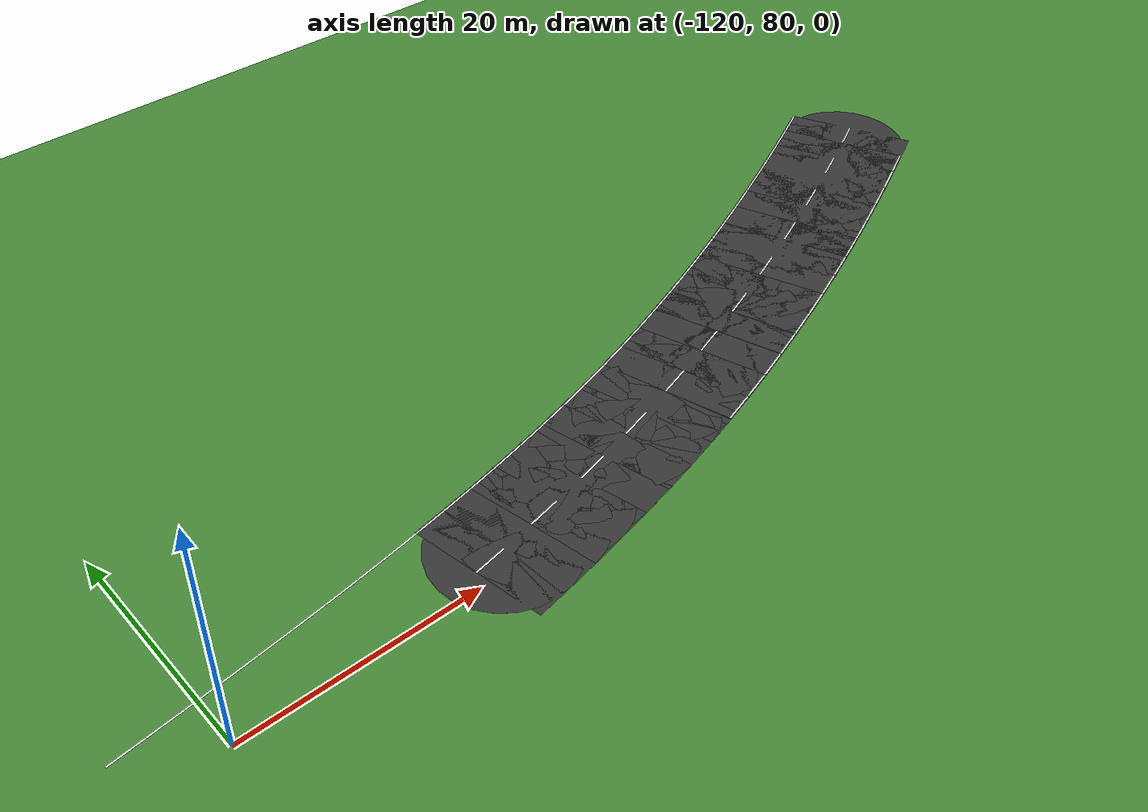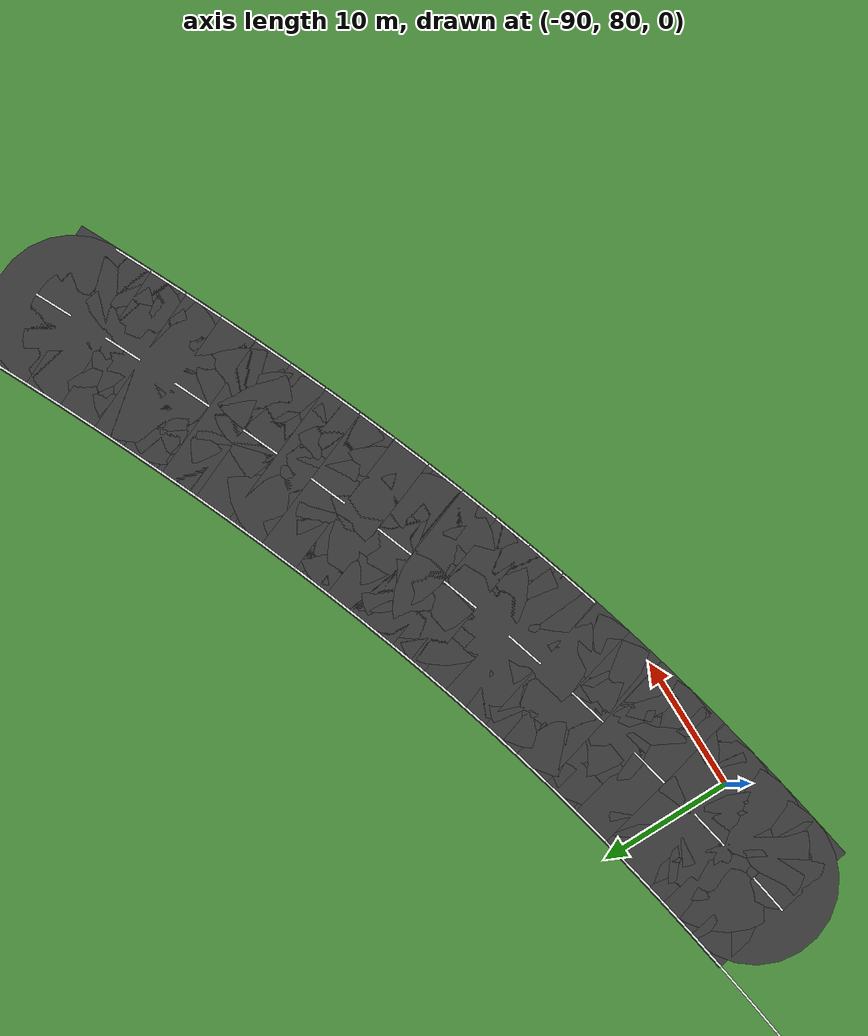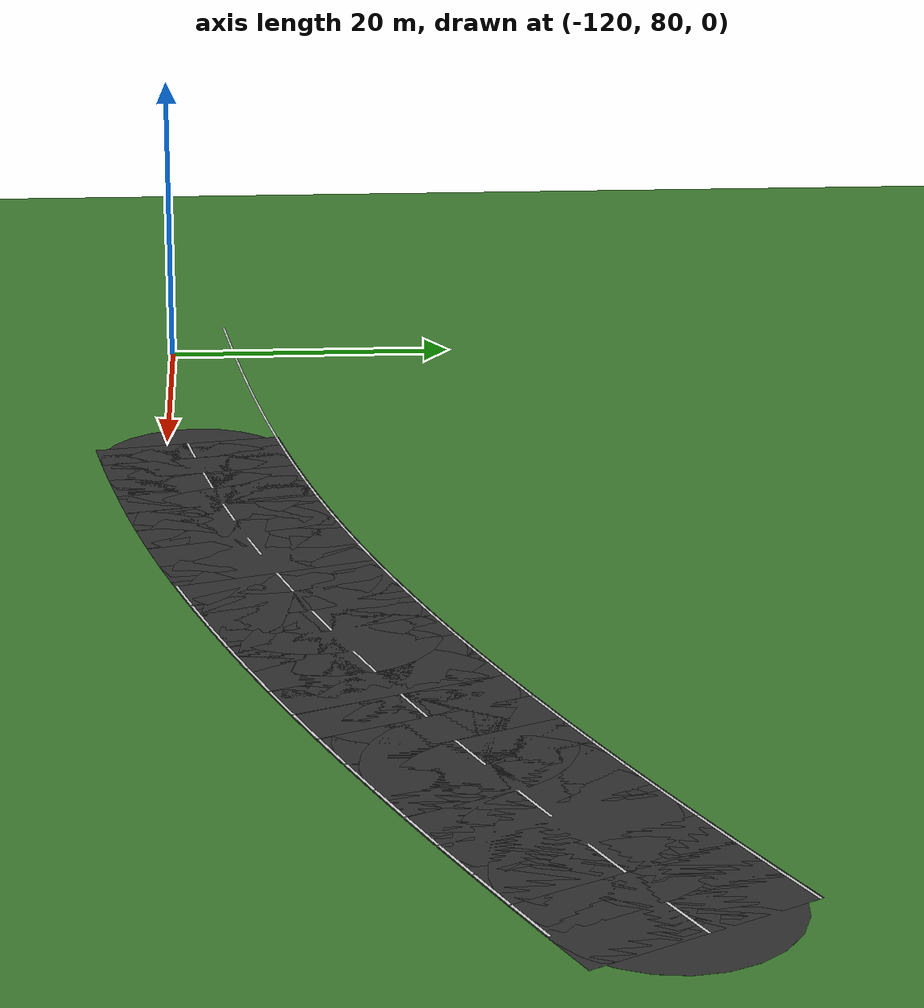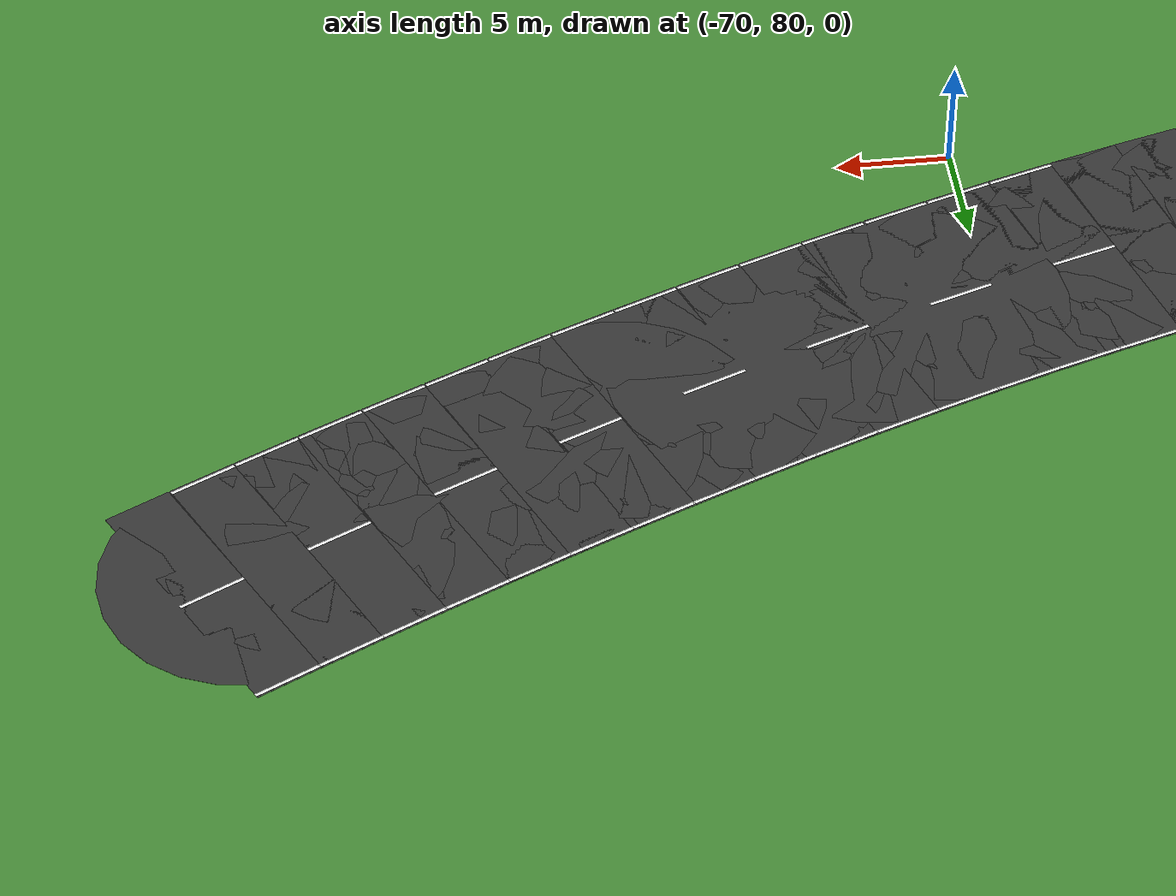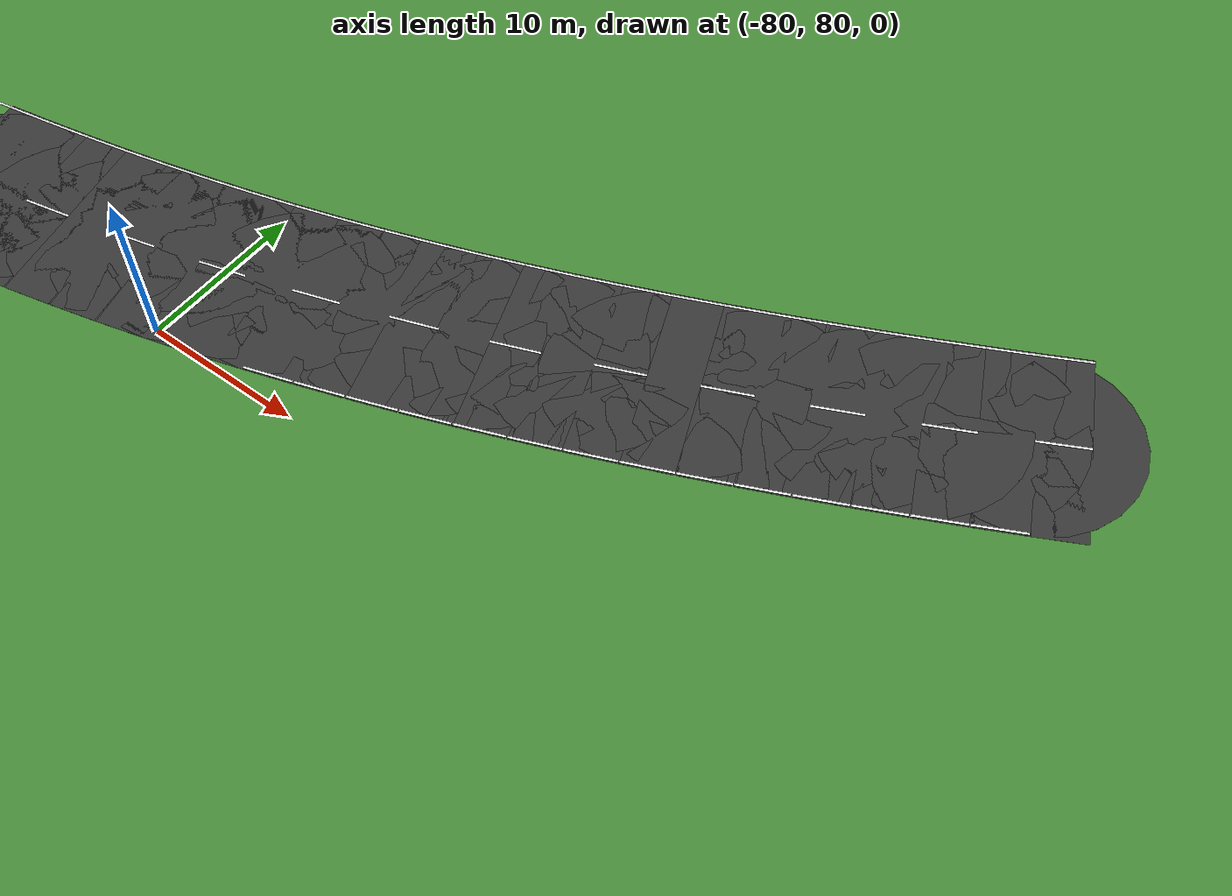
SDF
<sdf version="1.6">
 <world name="sem_silesia_ring_2026">
  <model name="ground_plane">
   <static>true</static>
   <link name="link">
    <collision name="collision">
     <geometry><plane><normal>0 0 1</normal><size>1200 1200</size></plane></geometry>
     <surface><friction><ode><mu>0.6</mu><mu2>0.6</mu2></ode></friction></surface>
    </collision>
    <visual name="visual">
     <geometry><plane><normal>0 0 1</normal><size>1200 1200</size></plane></geometry>
     <material><ambient>0.28 0.55 0.22 1</ambient><diffuse>0.28 0.55 0.22 1</diffuse></material>
    </visual>
   </link>
  </model>
  <model name="road_s334">
   <static>true</static>
   <pose>-35.7005 102.7938 0.0030 0 0 -2.6834</pose>
   <link name="link">
    <visual name="v">
     <geometry><box><size>3.0025 12.0000 0.0060</size></box></geometry>
     <material><ambient>0.22 0.22 0.22 1</ambient><diffuse>0.22 0.22 0.22 1</diffuse></material>
    </visual>
    <collision name="c">
     <geometry><box><size>3.0025 12.0000 0.0060</size></box></geometry>
     <surface><friction><ode><mu>0.9</mu><mu2>0.9</mu2></ode></friction></surface>
    </collision>
   </link>
  </model>
  <model name="wl_R_s334">
   <static>true</static>
   <pose>-38.2881 108.0404 0.0070 0 0 -2.6834</pose>
   <link name="link">
    <visual name="v">
     <geometry><box><size>3.0025 0.1500 0.0080</size></box></geometry>
     <material><ambient>0.95 0.95 0.95 1</ambient><diffuse>0.95 0.95 0.95 1</diffuse></material>
    </visual>
   </link>
  </model>
  <model name="cd_s334">
   <static>true</static>
   <pose>-35.7005 102.7938 0.0070 0 0 -2.6834</pose>
   <link name="link">
    <visual name="v">
     <geometry><box><size>3.0025 0.1500 0.0080</size></box></geometry>
     <material><ambient>0.95 0.95 0.95 1</ambient><diffuse>0.95 0.95 0.95 1</diffuse></material>
    </visual>
   </link>
  </model>
  <model name="road_s335">
   <static>true</static>
   <pose>-38.3986 101.4766 0.0030 0 0 -2.6914</pose>
   <link name="link">
    <visual name="v">
     <geometry><box><size>3.0025 12.0000 0.0060</size></box></geometry>
     <material><ambient>0.22 0.22 0.22 1</ambient><diffuse>0.22 0.22 0.22 1</diffuse></material>
    </visual>
    <collision name="c">
     <geometry><box><size>3.0025 12.0000 0.0060</size></box></geometry>
     <surface><friction><ode><mu>0.9</mu><mu2>0.9</mu2></ode></friction></surface>
    </collision>
   </link>
  </model>
  <model name="road_jnt335">
   <static>true</static>
   <pose>-37.0469 102.1298 0.0030 0 0 0</pose>
   <link name="link">
    <visual name="v">
     <geometry><cylinder><radius>6.0000</radius><length>0.0060</length></cylinder></geometry>
     <material><ambient>0.22 0.22 0.22 1</ambient><diffuse>0.22 0.22 0.22 1</diffuse></material>
    </visual>
    <collision name="c">
     <geometry><cylinder><radius>6.0000</radius><length>0.0060</length></cylinder></geometry>
     <surface><friction><ode><mu>0.9</mu><mu2>0.9</mu2></ode></friction></surface>
    </collision>
   </link>
  </model>
  <model name="wl_L_s335">
   <static>true</static>
   <pose>-35.8533 96.2094 0.0070 0 0 -2.6914</pose>
   <link name="link">
    <visual name="v">
     <geometry><box><size>3.0025 0.1500 0.0080</size></box></geometry>
     <material><ambient>0.95 0.95 0.95 1</ambient><diffuse>0.95 0.95 0.95 1</diffuse></material>
    </visual>
   </link>
  </model>
  <model name="wl_R_s335">
   <static>true</static>
   <pose>-40.9440 106.7438 0.0070 0 0 -2.6914</pose>
   <link name="link">
    <visual name="v">
     <geometry><box><size>3.0025 0.1500 0.0080</size></box></geometry>
     <material><ambient>0.95 0.95 0.95 1</ambient><diffuse>0.95 0.95 0.95 1</diffuse></material>
    </visual>
   </link>
  </model>
  <model name="road_s336">
   <static>true</static>
   <pose>-41.1076 100.1818 0.0030 0 0 -2.7000</pose>
   <link name="link">
    <visual name="v">
     <geometry><box><size>3.0025 12.0000 0.0060</size></box></geometry>
     <material><ambient>0.22 0.22 0.22 1</ambient><diffuse>0.22 0.22 0.22 1</diffuse></material>
    </visual>
    <collision name="c">
     <geometry><box><size>3.0025 12.0000 0.0060</size></box></geometry>
     <surface><friction><ode><mu>0.9</mu><mu2>0.9</mu2></ode></friction></surface>
    </collision>
   </link>
  </model>
  <model name="road_jnt336">
   <static>true</static>
   <pose>-39.7503 100.8234 0.0030 0 0 0</pose>
   <link name="link">
    <visual name="v">
     <geometry><cylinder><radius>6.0000</radius><length>0.0060</length></cylinder></geometry>
     <material><ambient>0.22 0.22 0.22 1</ambient><diffuse>0.22 0.22 0.22 1</diffuse></material>
    </visual>
    <collision name="c">
     <geometry><cylinder><radius>6.0000</radius><length>0.0060</length></cylinder></geometry>
     <surface><friction><ode><mu>0.9</mu><mu2>0.9</mu2></ode></friction></surface>
    </collision>
   </link>
  </model>
  <model name="wl_L_s336">
   <static>true</static>
   <pose>-38.6077 94.8929 0.0070 0 0 -2.7000</pose>
   <link name="link">
    <visual name="v">
     <geometry><box><size>3.0025 0.1500 0.0080</size></box></geometry>
     <material><ambient>0.95 0.95 0.95 1</ambient><diffuse>0.95 0.95 0.95 1</diffuse></material>
    </visual>
   </link>
  </model>
  <model name="wl_R_s336">
   <static>true</static>
   <pose>-43.6076 105.4707 0.0070 0 0 -2.7000</pose>
   <link name="link">
    <visual name="v">
     <geometry><box><size>3.0025 0.1500 0.0080</size></box></geometry>
     <material><ambient>0.95 0.95 0.95 1</ambient><diffuse>0.95 0.95 0.95 1</diffuse></material>
    </visual>
   </link>
  </model>
  <model name="cd_s336">
   <static>true</static>
   <pose>-41.1076 100.1818 0.0070 0 0 -2.7000</pose>
   <link name="link">
    <visual name="v">
     <geometry><box><size>3.0025 0.1500 0.0080</size></box></geometry>
     <material><ambient>0.95 0.95 0.95 1</ambient><diffuse>0.95 0.95 0.95 1</diffuse></material>
    </visual>
   </link>
  </model>
  <model name="road_s337">
   <static>true</static>
   <pose>-43.8280 98.9112 0.0030 0 0 -2.7092</pose>
   <link name="link">
    <visual name="v">
     <geometry><box><size>3.0025 12.0000 0.0060</size></box></geometry>
     <material><ambient>0.22 0.22 0.22 1</ambient><diffuse>0.22 0.22 0.22 1</diffuse></material>
    </visual>
    <collision name="c">
     <geometry><box><size>3.0025 12.0000 0.0060</size></box></geometry>
     <surface><friction><ode><mu>0.9</mu><mu2>0.9</mu2></ode></friction></surface>
    </collision>
   </link>
  </model>
  <model name="road_jnt337">
   <static>true</static>
   <pose>-42.4649 99.5403 0.0030 0 0 0</pose>
   <link name="link">
    <visual name="v">
     <geometry><cylinder><radius>6.0000</radius><length>0.0060</length></cylinder></geometry>
     <material><ambient>0.22 0.22 0.22 1</ambient><diffuse>0.22 0.22 0.22 1</diffuse></material>
    </visual>
    <collision name="c">
     <geometry><cylinder><radius>6.0000</radius><length>0.0060</length></cylinder></geometry>
     <surface><friction><ode><mu>0.9</mu><mu2>0.9</mu2></ode></friction></surface>
    </collision>
   </link>
  </model>
  <model name="wl_L_s337">
   <static>true</static>
   <pose>-41.3766 93.5996 0.0070 0 0 -2.7092</pose>
   <link name="link">
    <visual name="v">
     <geometry><box><size>3.0025 0.1500 0.0080</size></box></geometry>
     <material><ambient>0.95 0.95 0.95 1</ambient><diffuse>0.95 0.95 0.95 1</diffuse></material>
    </visual>
   </link>
  </model>
  <model name="wl_R_s337">
   <static>true</static>
   <pose>-46.2794 104.2228 0.0070 0 0 -2.7092</pose>
   <link name="link">
    <visual name="v">
     <geometry><box><size>3.0025 0.1500 0.0080</size></box></geometry>
     <material><ambient>0.95 0.95 0.95 1</ambient><diffuse>0.95 0.95 0.95 1</diffuse></material>
    </visual>
   </link>
  </model>
  <model name="road_s338">
   <static>true</static>
   <pose>-46.5603 97.6663 0.0030 0 0 -2.7189</pose>
   <link name="link">
    <visual name="v">
     <geometry><box><size>3.0025 12.0000 0.0060</size></box></geometry>
     <material><ambient>0.22 0.22 0.22 1</ambient><diffuse>0.22 0.22 0.22 1</diffuse></material>
    </visual>
    <collision name="c">
     <geometry><box><size>3.0025 12.0000 0.0060</size></box></geometry>
     <surface><friction><ode><mu>0.9</mu><mu2>0.9</mu2></ode></friction></surface>
    </collision>
   </link>
  </model>
  <model name="road_jnt338">
   <static>true</static>
   <pose>-45.1911 98.2821 0.0030 0 0 0</pose>
   <link name="link">
    <visual name="v">
     <geometry><cylinder><radius>6.0000</radius><length>0.0060</length></cylinder></geometry>
     <material><ambient>0.22 0.22 0.22 1</ambient><diffuse>0.22 0.22 0.22 1</diffuse></material>
    </visual>
    <collision name="c">
     <geometry><cylinder><radius>6.0000</radius><length>0.0060</length></cylinder></geometry>
     <surface><friction><ode><mu>0.9</mu><mu2>0.9</mu2></ode></friction></surface>
    </collision>
   </link>
  </model>
  <model name="wl_L_s338">
   <static>true</static>
   <pose>-44.1607 92.3311 0.0070 0 0 -2.7189</pose>
   <link name="link">
    <visual name="v">
     <geometry><box><size>3.0025 0.1500 0.0080</size></box></geometry>
     <material><ambient>0.95 0.95 0.95 1</ambient><diffuse>0.95 0.95 0.95 1</diffuse></material>
    </visual>
   </link>
  </model>
  <model name="wl_R_s338">
   <static>true</static>
   <pose>-48.9598 103.0015 0.0070 0 0 -2.7189</pose>
   <link name="link">
    <visual name="v">
     <geometry><box><size>3.0025 0.1500 0.0080</size></box></geometry>
     <material><ambient>0.95 0.95 0.95 1</ambient><diffuse>0.95 0.95 0.95 1</diffuse></material>
    </visual>
   </link>
  </model>
  <model name="cd_s338">
   <static>true</static>
   <pose>-46.5603 97.6663 0.0070 0 0 -2.7189</pose>
   <link name="link">
    <visual name="v">
     <geometry><box><size>3.0025 0.1500 0.0080</size></box></geometry>
     <material><ambient>0.95 0.95 0.95 1</ambient><diffuse>0.95 0.95 0.95 1</diffuse></material>
    </visual>
   </link>
  </model>
  <model name="road_s339">
   <static>true</static>
   <pose>-49.3049 96.4489 0.0030 0 0 -2.7293</pose>
   <link name="link">
    <visual name="v">
     <geometry><box><size>3.0025 12.0000 0.0060</size></box></geometry>
     <material><ambient>0.22 0.22 0.22 1</ambient><diffuse>0.22 0.22 0.22 1</diffuse></material>
    </visual>
    <collision name="c">
     <geometry><box><size>3.0025 12.0000 0.0060</size></box></geometry>
     <surface><friction><ode><mu>0.9</mu><mu2>0.9</mu2></ode></friction></surface>
    </collision>
   </link>
  </model>
  <model name="road_jnt339">
   <static>true</static>
   <pose>-47.9294 97.0505 0.0030 0 0 0</pose>
   <link name="link">
    <visual name="v">
     <geometry><cylinder><radius>6.0000</radius><length>0.0060</length></cylinder></geometry>
     <material><ambient>0.22 0.22 0.22 1</ambient><diffuse>0.22 0.22 0.22 1</diffuse></material>
    </visual>
    <collision name="c">
     <geometry><cylinder><radius>6.0000</radius><length>0.0060</length></cylinder></geometry>
     <surface><friction><ode><mu>0.9</mu><mu2>0.9</mu2></ode></friction></surface>
    </collision>
   </link>
  </model>
  <model name="wl_L_s339">
   <static>true</static>
   <pose>-46.9605 91.0892 0.0070 0 0 -2.7293</pose>
   <link name="link">
    <visual name="v">
     <geometry><box><size>3.0025 0.1500 0.0080</size></box></geometry>
     <material><ambient>0.95 0.95 0.95 1</ambient><diffuse>0.95 0.95 0.95 1</diffuse></material>
    </visual>
   </link>
  </model>
  <model name="wl_R_s339">
   <static>true</static>
   <pose>-51.6492 101.8086 0.0070 0 0 -2.7293</pose>
   <link name="link">
    <visual name="v">
     <geometry><box><size>3.0025 0.1500 0.0080</size></box></geometry>
     <material><ambient>0.95 0.95 0.95 1</ambient><diffuse>0.95 0.95 0.95 1</diffuse></material>
    </visual>
   </link>
  </model>
  <model name="road_s340">
   <static>true</static>
   <pose>-52.0622 95.2607 0.0030 0 0 -2.7402</pose>
   <link name="link">
    <visual name="v">
     <geometry><box><size>3.0025 12.0000 0.0060</size></box></geometry>
     <material><ambient>0.22 0.22 0.22 1</ambient><diffuse>0.22 0.22 0.22 1</diffuse></material>
    </visual>
    <collision name="c">
     <geometry><box><size>3.0025 12.0000 0.0060</size></box></geometry>
     <surface><friction><ode><mu>0.9</mu><mu2>0.9</mu2></ode></friction></surface>
    </collision>
   </link>
  </model>
  <model name="road_jnt340">
   <static>true</static>
   <pose>-50.6803 95.8473 0.0030 0 0 0</pose>
   <link name="link">
    <visual name="v">
     <geometry><cylinder><radius>6.0000</radius><length>0.0060</length></cylinder></geometry>
     <material><ambient>0.22 0.22 0.22 1</ambient><diffuse>0.22 0.22 0.22 1</diffuse></material>
    </visual>
    <collision name="c">
     <geometry><cylinder><radius>6.0000</radius><length>0.0060</length></cylinder></geometry>
     <surface><friction><ode><mu>0.9</mu><mu2>0.9</mu2></ode></friction></surface>
    </collision>
   </link>
  </model>
  <model name="wl_L_s340">
   <static>true</static>
   <pose>-49.7764 89.8757 0.0070 0 0 -2.7402</pose>
   <link name="link">
    <visual name="v">
     <geometry><box><size>3.0025 0.1500 0.0080</size></box></geometry>
     <material><ambient>0.95 0.95 0.95 1</ambient><diffuse>0.95 0.95 0.95 1</diffuse></material>
    </visual>
   </link>
  </model>
  <model name="wl_R_s340">
   <static>true</static>
   <pose>-54.3480 100.6456 0.0070 0 0 -2.7402</pose>
   <link name="link">
    <visual name="v">
     <geometry><box><size>3.0025 0.1500 0.0080</size></box></geometry>
     <material><ambient>0.95 0.95 0.95 1</ambient><diffuse>0.95 0.95 0.95 1</diffuse></material>
    </visual>
   </link>
  </model>
  <model name="cd_s340">
   <static>true</static>
   <pose>-52.0622 95.2607 0.0070 0 0 -2.7402</pose>
   <link name="link">
    <visual name="v">
     <geometry><box><size>3.0025 0.1500 0.0080</size></box></geometry>
     <material><ambient>0.95 0.95 0.95 1</ambient><diffuse>0.95 0.95 0.95 1</diffuse></material>
    </visual>
   </link>
  </model>
  <model name="road_s341">
   <static>true</static>
   <pose>-54.8327 94.1034 0.0030 0 0 -2.7516</pose>
   <link name="link">
    <visual name="v">
     <geometry><box><size>3.0025 12.0000 0.0060</size></box></geometry>
     <material><ambient>0.22 0.22 0.22 1</ambient><diffuse>0.22 0.22 0.22 1</diffuse></material>
    </visual>
    <collision name="c">
     <geometry><box><size>3.0025 12.0000 0.0060</size></box></geometry>
     <surface><friction><ode><mu>0.9</mu><mu2>0.9</mu2></ode></friction></surface>
    </collision>
   </link>
  </model>
  <model name="road_jnt341">
   <static>true</static>
   <pose>-53.4441 94.6741 0.0030 0 0 0</pose>
   <link name="link">
    <visual name="v">
     <geometry><cylinder><radius>6.0000</radius><length>0.0060</length></cylinder></geometry>
     <material><ambient>0.22 0.22 0.22 1</ambient><diffuse>0.22 0.22 0.22 1</diffuse></material>
    </visual>
    <collision name="c">
     <geometry><cylinder><radius>6.0000</radius><length>0.0060</length></cylinder></geometry>
     <surface><friction><ode><mu>0.9</mu><mu2>0.9</mu2></ode></friction></surface>
    </collision>
   </link>
  </model>
  <model name="wl_L_s341">
   <static>true</static>
   <pose>-52.6089 88.6926 0.0070 0 0 -2.7516</pose>
   <link name="link">
    <visual name="v">
     <geometry><box><size>3.0025 0.1500 0.0080</size></box></geometry>
     <material><ambient>0.95 0.95 0.95 1</ambient><diffuse>0.95 0.95 0.95 1</diffuse></material>
    </visual>
   </link>
  </model>
  <model name="wl_R_s341">
   <static>true</static>
   <pose>-57.0565 99.5142 0.0070 0 0 -2.7516</pose>
   <link name="link">
    <visual name="v">
     <geometry><box><size>3.0025 0.1500 0.0080</size></box></geometry>
     <material><ambient>0.95 0.95 0.95 1</ambient><diffuse>0.95 0.95 0.95 1</diffuse></material>
    </visual>
   </link>
  </model>
  <model name="road_s342">
   <static>true</static>
   <pose>-57.6166 92.9788 0.0030 0 0 -2.7637</pose>
   <link name="link">
    <visual name="v">
     <geometry><box><size>3.0025 12.0000 0.0060</size></box></geometry>
     <material><ambient>0.22 0.22 0.22 1</ambient><diffuse>0.22 0.22 0.22 1</diffuse></material>
    </visual>
    <collision name="c">
     <geometry><box><size>3.0025 12.0000 0.0060</size></box></geometry>
     <surface><friction><ode><mu>0.9</mu><mu2>0.9</mu2></ode></friction></surface>
    </collision>
   </link>
  </model>
  <model name="road_jnt342">
   <static>true</static>
   <pose>-56.2212 93.5327 0.0030 0 0 0</pose>
   <link name="link">
    <visual name="v">
     <geometry><cylinder><radius>6.0000</radius><length>0.0060</length></cylinder></geometry>
     <material><ambient>0.22 0.22 0.22 1</ambient><diffuse>0.22 0.22 0.22 1</diffuse></material>
    </visual>
    <collision name="c">
     <geometry><cylinder><radius>6.0000</radius><length>0.0060</length></cylinder></geometry>
     <surface><friction><ode><mu>0.9</mu><mu2>0.9</mu2></ode></friction></surface>
    </collision>
   </link>
  </model>
  <model name="wl_L_s342">
   <static>true</static>
   <pose>-55.4583 87.5415 0.0070 0 0 -2.7637</pose>
   <link name="link">
    <visual name="v">
     <geometry><box><size>3.0025 0.1500 0.0080</size></box></geometry>
     <material><ambient>0.95 0.95 0.95 1</ambient><diffuse>0.95 0.95 0.95 1</diffuse></material>
    </visual>
   </link>
  </model>
  <model name="wl_R_s342">
   <static>true</static>
   <pose>-59.7749 98.4161 0.0070 0 0 -2.7637</pose>
   <link name="link">
    <visual name="v">
     <geometry><box><size>3.0025 0.1500 0.0080</size></box></geometry>
     <material><ambient>0.95 0.95 0.95 1</ambient><diffuse>0.95 0.95 0.95 1</diffuse></material>
    </visual>
   </link>
  </model>
  <model name="cd_s342">
   <static>true</static>
   <pose>-57.6166 92.9788 0.0070 0 0 -2.7637</pose>
   <link name="link">
    <visual name="v">
     <geometry><box><size>3.0025 0.1500 0.0080</size></box></geometry>
     <material><ambient>0.95 0.95 0.95 1</ambient><diffuse>0.95 0.95 0.95 1</diffuse></material>
    </visual>
   </link>
  </model>
  <model name="road_s343">
   <static>true</static>
   <pose>-60.4142 91.8888 0.0030 0 0 -2.7764</pose>
   <link name="link">
    <visual name="v">
     <geometry><box><size>3.0025 12.0000 0.0060</size></box></geometry>
     <material><ambient>0.22 0.22 0.22 1</ambient><diffuse>0.22 0.22 0.22 1</diffuse></material>
    </visual>
    <collision name="c">
     <geometry><box><size>3.0025 12.0000 0.0060</size></box></geometry>
     <surface><friction><ode><mu>0.9</mu><mu2>0.9</mu2></ode></friction></surface>
    </collision>
   </link>
  </model>
  <model name="road_jnt343">
   <static>true</static>
   <pose>-59.0119 92.4249 0.0030 0 0 0</pose>
   <link name="link">
    <visual name="v">
     <geometry><cylinder><radius>6.0000</radius><length>0.0060</length></cylinder></geometry>
     <material><ambient>0.22 0.22 0.22 1</ambient><diffuse>0.22 0.22 0.22 1</diffuse></material>
    </visual>
    <collision name="c">
     <geometry><cylinder><radius>6.0000</radius><length>0.0060</length></cylinder></geometry>
     <surface><friction><ode><mu>0.9</mu><mu2>0.9</mu2></ode></friction></surface>
    </collision>
   </link>
  </model>
  <model name="wl_L_s343">
   <static>true</static>
   <pose>-58.3249 86.4246 0.0070 0 0 -2.7764</pose>
   <link name="link">
    <visual name="v">
     <geometry><box><size>3.0025 0.1500 0.0080</size></box></geometry>
     <material><ambient>0.95 0.95 0.95 1</ambient><diffuse>0.95 0.95 0.95 1</diffuse></material>
    </visual>
   </link>
  </model>
  <model name="wl_R_s343">
   <static>true</static>
   <pose>-62.5035 97.3530 0.0070 0 0 -2.7764</pose>
   <link name="link">
    <visual name="v">
     <geometry><box><size>3.0025 0.1500 0.0080</size></box></geometry>
     <material><ambient>0.95 0.95 0.95 1</ambient><diffuse>0.95 0.95 0.95 1</diffuse></material>
    </visual>
   </link>
  </model>
  <model name="road_s344">
   <static>true</static>
   <pose>-63.2257 90.8351 0.0030 0 0 -2.7897</pose>
   <link name="link">
    <visual name="v">
     <geometry><box><size>3.0025 12.0000 0.0060</size></box></geometry>
     <material><ambient>0.22 0.22 0.22 1</ambient><diffuse>0.22 0.22 0.22 1</diffuse></material>
    </visual>
    <collision name="c">
     <geometry><box><size>3.0025 12.0000 0.0060</size></box></geometry>
     <surface><friction><ode><mu>0.9</mu><mu2>0.9</mu2></ode></friction></surface>
    </collision>
   </link>
  </model>
  <model name="road_jnt344">
   <static>true</static>
   <pose>-61.8164 91.3526 0.0030 0 0 0</pose>
   <link name="link">
    <visual name="v">
     <geometry><cylinder><radius>6.0000</radius><length>0.0060</length></cylinder></geometry>
     <material><ambient>0.22 0.22 0.22 1</ambient><diffuse>0.22 0.22 0.22 1</diffuse></material>
    </visual>
    <collision name="c">
     <geometry><cylinder><radius>6.0000</radius><length>0.0060</length></cylinder></geometry>
     <surface><friction><ode><mu>0.9</mu><mu2>0.9</mu2></ode></friction></surface>
    </collision>
   </link>
  </model>
  <model name="wl_L_s344">
   <static>true</static>
   <pose>-61.2091 85.3437 0.0070 0 0 -2.7897</pose>
   <link name="link">
    <visual name="v">
     <geometry><box><size>3.0025 0.1500 0.0080</size></box></geometry>
     <material><ambient>0.95 0.95 0.95 1</ambient><diffuse>0.95 0.95 0.95 1</diffuse></material>
    </visual>
   </link>
  </model>
  <model name="wl_R_s344">
   <static>true</static>
   <pose>-65.2423 96.3265 0.0070 0 0 -2.7897</pose>
   <link name="link">
    <visual name="v">
     <geometry><box><size>3.0025 0.1500 0.0080</size></box></geometry>
     <material><ambient>0.95 0.95 0.95 1</ambient><diffuse>0.95 0.95 0.95 1</diffuse></material>
    </visual>
   </link>
  </model>
  <model name="cd_s344">
   <static>true</static>
   <pose>-63.2257 90.8351 0.0070 0 0 -2.7897</pose>
   <link name="link">
    <visual name="v">
     <geometry><box><size>3.0025 0.1500 0.0080</size></box></geometry>
     <material><ambient>0.95 0.95 0.95 1</ambient><diffuse>0.95 0.95 0.95 1</diffuse></material>
    </visual>
   </link>
  </model>
  <model name="road_s345">
   <static>true</static>
   <pose>-66.0512 89.8197 0.0030 0 0 -2.8035</pose>
   <link name="link">
    <visual name="v">
     <geometry><box><size>3.0025 12.0000 0.0060</size></box></geometry>
     <material><ambient>0.22 0.22 0.22 1</ambient><diffuse>0.22 0.22 0.22 1</diffuse></material>
    </visual>
    <collision name="c">
     <geometry><box><size>3.0025 12.0000 0.0060</size></box></geometry>
     <surface><friction><ode><mu>0.9</mu><mu2>0.9</mu2></ode></friction></surface>
    </collision>
   </link>
  </model>
  <model name="road_jnt345">
   <static>true</static>
   <pose>-64.6349 90.3176 0.0030 0 0 0</pose>
   <link name="link">
    <visual name="v">
     <geometry><cylinder><radius>6.0000</radius><length>0.0060</length></cylinder></geometry>
     <material><ambient>0.22 0.22 0.22 1</ambient><diffuse>0.22 0.22 0.22 1</diffuse></material>
    </visual>
    <collision name="c">
     <geometry><cylinder><radius>6.0000</radius><length>0.0060</length></cylinder></geometry>
     <surface><friction><ode><mu>0.9</mu><mu2>0.9</mu2></ode></friction></surface>
    </collision>
   </link>
  </model>
  <model name="wl_L_s345">
   <static>true</static>
   <pose>-64.1109 84.3008 0.0070 0 0 -2.8035</pose>
   <link name="link">
    <visual name="v">
     <geometry><box><size>3.0025 0.1500 0.0080</size></box></geometry>
     <material><ambient>0.95 0.95 0.95 1</ambient><diffuse>0.95 0.95 0.95 1</diffuse></material>
    </visual>
   </link>
  </model>
  <model name="wl_R_s345">
   <static>true</static>
   <pose>-67.9915 95.3385 0.0070 0 0 -2.8035</pose>
   <link name="link">
    <visual name="v">
     <geometry><box><size>3.0025 0.1500 0.0080</size></box></geometry>
     <material><ambient>0.95 0.95 0.95 1</ambient><diffuse>0.95 0.95 0.95 1</diffuse></material>
    </visual>
   </link>
  </model>
  <model name="road_s346">
   <static>true</static>
   <pose>-68.8908 88.8444 0.0030 0 0 -2.8180</pose>
   <link name="link">
    <visual name="v">
     <geometry><box><size>3.0025 12.0000 0.0060</size></box></geometry>
     <material><ambient>0.22 0.22 0.22 1</ambient><diffuse>0.22 0.22 0.22 1</diffuse></material>
    </visual>
    <collision name="c">
     <geometry><box><size>3.0025 12.0000 0.0060</size></box></geometry>
     <surface><friction><ode><mu>0.9</mu><mu2>0.9</mu2></ode></friction></surface>
    </collision>
   </link>
  </model>
  <model name="road_jnt346">
   <static>true</static>
   <pose>-67.4675 89.3218 0.0030 0 0 0</pose>
   <link name="link">
    <visual name="v">
     <geometry><cylinder><radius>6.0000</radius><length>0.0060</length></cylinder></geometry>
     <material><ambient>0.22 0.22 0.22 1</ambient><diffuse>0.22 0.22 0.22 1</diffuse></material>
    </visual>
    <collision name="c">
     <geometry><cylinder><radius>6.0000</radius><length>0.0060</length></cylinder></geometry>
     <surface><friction><ode><mu>0.9</mu><mu2>0.9</mu2></ode></friction></surface>
    </collision>
   </link>
  </model>
  <model name="wl_L_s346">
   <static>true</static>
   <pose>-67.0305 83.2980 0.0070 0 0 -2.8180</pose>
   <link name="link">
    <visual name="v">
     <geometry><box><size>3.0025 0.1500 0.0080</size></box></geometry>
     <material><ambient>0.95 0.95 0.95 1</ambient><diffuse>0.95 0.95 0.95 1</diffuse></material>
    </visual>
   </link>
  </model>
  <model name="wl_R_s346">
   <static>true</static>
   <pose>-70.7511 94.3907 0.0070 0 0 -2.8180</pose>
   <link name="link">
    <visual name="v">
     <geometry><box><size>3.0025 0.1500 0.0080</size></box></geometry>
     <material><ambient>0.95 0.95 0.95 1</ambient><diffuse>0.95 0.95 0.95 1</diffuse></material>
    </visual>
   </link>
  </model>
  <model name="cd_s346">
   <static>true</static>
   <pose>-68.8908 88.8444 0.0070 0 0 -2.8180</pose>
   <link name="link">
    <visual name="v">
     <geometry><box><size>3.0025 0.1500 0.0080</size></box></geometry>
     <material><ambient>0.95 0.95 0.95 1</ambient><diffuse>0.95 0.95 0.95 1</diffuse></material>
    </visual>
   </link>
  </model>
  <model name="road_s347">
   <static>true</static>
   <pose>-71.7445 87.9110 0.0030 0 0 -2.8330</pose>
   <link name="link">
    <visual name="v">
     <geometry><box><size>3.0025 12.0000 0.0060</size></box></geometry>
     <material><ambient>0.22 0.22 0.22 1</ambient><diffuse>0.22 0.22 0.22 1</diffuse></material>
    </visual>
    <collision name="c">
     <geometry><box><size>3.0025 12.0000 0.0060</size></box></geometry>
     <surface><friction><ode><mu>0.9</mu><mu2>0.9</mu2></ode></friction></surface>
    </collision>
   </link>
  </model>
  <model name="road_jnt347">
   <static>true</static>
   <pose>-70.3141 88.3670 0.0030 0 0 0</pose>
   <link name="link">
    <visual name="v">
     <geometry><cylinder><radius>6.0000</radius><length>0.0060</length></cylinder></geometry>
     <material><ambient>0.22 0.22 0.22 1</ambient><diffuse>0.22 0.22 0.22 1</diffuse></material>
    </visual>
    <collision name="c">
     <geometry><cylinder><radius>6.0000</radius><length>0.0060</length></cylinder></geometry>
     <surface><friction><ode><mu>0.9</mu><mu2>0.9</mu2></ode></friction></surface>
    </collision>
   </link>
  </model>
  <model name="wl_L_s347">
   <static>true</static>
   <pose>-69.9679 82.3373 0.0070 0 0 -2.8330</pose>
   <link name="link">
    <visual name="v">
     <geometry><box><size>3.0025 0.1500 0.0080</size></box></geometry>
     <material><ambient>0.95 0.95 0.95 1</ambient><diffuse>0.95 0.95 0.95 1</diffuse></material>
    </visual>
   </link>
  </model>
  <model name="wl_R_s347">
   <static>true</static>
   <pose>-73.5211 93.4848 0.0070 0 0 -2.8330</pose>
   <link name="link">
    <visual name="v">
     <geometry><box><size>3.0025 0.1500 0.0080</size></box></geometry>
     <material><ambient>0.95 0.95 0.95 1</ambient><diffuse>0.95 0.95 0.95 1</diffuse></material>
    </visual>
   </link>
  </model>
  <model name="road_s348">
   <static>true</static>
   <pose>-74.6121 87.0216 0.0030 0 0 -2.8487</pose>
   <link name="link">
    <visual name="v">
     <geometry><box><size>3.0025 12.0000 0.0060</size></box></geometry>
     <material><ambient>0.22 0.22 0.22 1</ambient><diffuse>0.22 0.22 0.22 1</diffuse></material>
    </visual>
    <collision name="c">
     <geometry><box><size>3.0025 12.0000 0.0060</size></box></geometry>
     <surface><friction><ode><mu>0.9</mu><mu2>0.9</mu2></ode></friction></surface>
    </collision>
   </link>
  </model>
  <model name="road_jnt348">
   <static>true</static>
   <pose>-73.1748 87.4551 0.0030 0 0 0</pose>
   <link name="link">
    <visual name="v">
     <geometry><cylinder><radius>6.0000</radius><length>0.0060</length></cylinder></geometry>
     <material><ambient>0.22 0.22 0.22 1</ambient><diffuse>0.22 0.22 0.22 1</diffuse></material>
    </visual>
    <collision name="c">
     <geometry><cylinder><radius>6.0000</radius><length>0.0060</length></cylinder></geometry>
     <surface><friction><ode><mu>0.9</mu><mu2>0.9</mu2></ode></friction></surface>
    </collision>
   </link>
  </model>
  <model name="wl_L_s348">
   <static>true</static>
   <pose>-72.9229 81.4208 0.0070 0 0 -2.8487</pose>
   <link name="link">
    <visual name="v">
     <geometry><box><size>3.0025 0.1500 0.0080</size></box></geometry>
     <material><ambient>0.95 0.95 0.95 1</ambient><diffuse>0.95 0.95 0.95 1</diffuse></material>
    </visual>
   </link>
  </model>
  <model name="wl_R_s348">
   <static>true</static>
   <pose>-76.3013 92.6225 0.0070 0 0 -2.8487</pose>
   <link name="link">
    <visual name="v">
     <geometry><box><size>3.0025 0.1500 0.0080</size></box></geometry>
     <material><ambient>0.95 0.95 0.95 1</ambient><diffuse>0.95 0.95 0.95 1</diffuse></material>
    </visual>
   </link>
  </model>
  <model name="cd_s348">
   <static>true</static>
   <pose>-74.6121 87.0216 0.0070 0 0 -2.8487</pose>
   <link name="link">
    <visual name="v">
     <geometry><box><size>3.0025 0.1500 0.0080</size></box></geometry>
     <material><ambient>0.95 0.95 0.95 1</ambient><diffuse>0.95 0.95 0.95 1</diffuse></material>
    </visual>
   </link>
  </model>
  <model name="road_s349">
   <static>true</static>
   <pose>-77.4936 86.1780 0.0030 0 0 -2.8649</pose>
   <link name="link">
    <visual name="v">
     <geometry><box><size>3.0025 12.0000 0.0060</size></box></geometry>
     <material><ambient>0.22 0.22 0.22 1</ambient><diffuse>0.22 0.22 0.22 1</diffuse></material>
    </visual>
    <collision name="c">
     <geometry><box><size>3.0025 12.0000 0.0060</size></box></geometry>
     <surface><friction><ode><mu>0.9</mu><mu2>0.9</mu2></ode></friction></surface>
    </collision>
   </link>
  </model>
  <model name="road_jnt349">
   <static>true</static>
   <pose>-76.0494 86.5882 0.0030 0 0 0</pose>
   <link name="link">
    <visual name="v">
     <geometry><cylinder><radius>6.0000</radius><length>0.0060</length></cylinder></geometry>
     <material><ambient>0.22 0.22 0.22 1</ambient><diffuse>0.22 0.22 0.22 1</diffuse></material>
    </visual>
    <collision name="c">
     <geometry><cylinder><radius>6.0000</radius><length>0.0060</length></cylinder></geometry>
     <surface><friction><ode><mu>0.9</mu><mu2>0.9</mu2></ode></friction></surface>
    </collision>
   </link>
  </model>
  <model name="wl_R_s349">
   <static>true</static>
   <pose>-79.0917 91.8055 0.0070 0 0 -2.8649</pose>
   <link name="link">
    <visual name="v">
     <geometry><box><size>3.0025 0.1500 0.0080</size></box></geometry>
     <material><ambient>0.95 0.95 0.95 1</ambient><diffuse>0.95 0.95 0.95 1</diffuse></material>
    </visual>
   </link>
  </model>
  <model name="road_s350">
   <static>true</static>
   <pose>-80.3886 85.3822 0.0030 0 0 -2.8817</pose>
   <link name="link">
    <visual name="v">
     <geometry><box><size>3.0025 12.0000 0.0060</size></box></geometry>
     <material><ambient>0.22 0.22 0.22 1</ambient><diffuse>0.22 0.22 0.22 1</diffuse></material>
    </visual>
    <collision name="c">
     <geometry><box><size>3.0025 12.0000 0.0060</size></box></geometry>
     <surface><friction><ode><mu>0.9</mu><mu2>0.9</mu2></ode></friction></surface>
    </collision>
   </link>
  </model>
  <model name="road_jnt350">
   <static>true</static>
   <pose>-78.9377 85.7679 0.0030 0 0 0</pose>
   <link name="link">
    <visual name="v">
     <geometry><cylinder><radius>6.0000</radius><length>0.0060</length></cylinder></geometry>
     <material><ambient>0.22 0.22 0.22 1</ambient><diffuse>0.22 0.22 0.22 1</diffuse></material>
    </visual>
    <collision name="c">
     <geometry><cylinder><radius>6.0000</radius><length>0.0060</length></cylinder></geometry>
     <surface><friction><ode><mu>0.9</mu><mu2>0.9</mu2></ode></friction></surface>
    </collision>
   </link>
  </model>
  <model name="wl_R_s350">
   <static>true</static>
   <pose>-81.8919 91.0357 0.0070 0 0 -2.8817</pose>
   <link name="link">
    <visual name="v">
     <geometry><box><size>3.0025 0.1500 0.0080</size></box></geometry>
     <material><ambient>0.95 0.95 0.95 1</ambient><diffuse>0.95 0.95 0.95 1</diffuse></material>
    </visual>
   </link>
  </model>
  <model name="cd_s350">
   <static>true</static>
   <pose>-80.3886 85.3822 0.0070 0 0 -2.8817</pose>
   <link name="link">
    <visual name="v">
     <geometry><box><size>3.0025 0.1500 0.0080</size></box></geometry>
     <material><ambient>0.95 0.95 0.95 1</ambient><diffuse>0.95 0.95 0.95 1</diffuse></material>
    </visual>
   </link>
  </model>
  <model name="road_s351">
   <static>true</static>
   <pose>-83.2966 84.6354 0.0030 0 0 -2.8988</pose>
   <link name="link">
    <visual name="v">
     <geometry><box><size>3.0025 12.0000 0.0060</size></box></geometry>
     <material><ambient>0.22 0.22 0.22 1</ambient><diffuse>0.22 0.22 0.22 1</diffuse></material>
    </visual>
    <collision name="c">
     <geometry><box><size>3.0025 12.0000 0.0060</size></box></geometry>
     <surface><friction><ode><mu>0.9</mu><mu2>0.9</mu2></ode></friction></surface>
    </collision>
   </link>
  </model>
  <model name="road_jnt351">
   <static>true</static>
   <pose>-81.8394 84.9964 0.0030 0 0 0</pose>
   <link name="link">
    <visual name="v">
     <geometry><cylinder><radius>6.0000</radius><length>0.0060</length></cylinder></geometry>
     <material><ambient>0.22 0.22 0.22 1</ambient><diffuse>0.22 0.22 0.22 1</diffuse></material>
    </visual>
    <collision name="c">
     <geometry><cylinder><radius>6.0000</radius><length>0.0060</length></cylinder></geometry>
     <surface><friction><ode><mu>0.9</mu><mu2>0.9</mu2></ode></friction></surface>
    </collision>
   </link>
  </model>
  <model name="wl_R_s351">
   <static>true</static>
   <pose>-84.7031 90.3138 0.0070 0 0 -2.8988</pose>
   <link name="link">
    <visual name="v">
     <geometry><box><size>3.0025 0.1500 0.0080</size></box></geometry>
     <material><ambient>0.95 0.95 0.95 1</ambient><diffuse>0.95 0.95 0.95 1</diffuse></material>
    </visual>
   </link>
  </model>
  <model name="road_s352">
   <static>true</static>
   <pose>-86.2168 83.9374 0.0030 0 0 -2.9151</pose>
   <link name="link">
    <visual name="v">
     <geometry><box><size>3.0025 12.0000 0.0060</size></box></geometry>
     <material><ambient>0.22 0.22 0.22 1</ambient><diffuse>0.22 0.22 0.22 1</diffuse></material>
    </visual>
    <collision name="c">
     <geometry><box><size>3.0025 12.0000 0.0060</size></box></geometry>
     <surface><friction><ode><mu>0.9</mu><mu2>0.9</mu2></ode></friction></surface>
    </collision>
   </link>
  </model>
  <model name="road_jnt352">
   <static>true</static>
   <pose>-84.7538 84.2745 0.0030 0 0 0</pose>
   <link name="link">
    <visual name="v">
     <geometry><cylinder><radius>6.0000</radius><length>0.0060</length></cylinder></geometry>
     <material><ambient>0.22 0.22 0.22 1</ambient><diffuse>0.22 0.22 0.22 1</diffuse></material>
    </visual>
    <collision name="c">
     <geometry><cylinder><radius>6.0000</radius><length>0.0060</length></cylinder></geometry>
     <surface><friction><ode><mu>0.9</mu><mu2>0.9</mu2></ode></friction></surface>
    </collision>
   </link>
  </model>
  <model name="wl_R_s352">
   <static>true</static>
   <pose>-87.5303 89.6380 0.0070 0 0 -2.9151</pose>
   <link name="link">
    <visual name="v">
     <geometry><box><size>3.0025 0.1500 0.0080</size></box></geometry>
     <material><ambient>0.95 0.95 0.95 1</ambient><diffuse>0.95 0.95 0.95 1</diffuse></material>
    </visual>
   </link>
  </model>
  <model name="cd_s352">
   <static>true</static>
   <pose>-86.2168 83.9374 0.0070 0 0 -2.9151</pose>
   <link name="link">
    <visual name="v">
     <geometry><box><size>3.0025 0.1500 0.0080</size></box></geometry>
     <material><ambient>0.95 0.95 0.95 1</ambient><diffuse>0.95 0.95 0.95 1</diffuse></material>
    </visual>
   </link>
  </model>
  <model name="road_s353">
   <static>true</static>
   <pose>-89.1476 83.2857 0.0030 0 0 -2.9305</pose>
   <link name="link">
    <visual name="v">
     <geometry><box><size>3.0025 12.0000 0.0060</size></box></geometry>
     <material><ambient>0.22 0.22 0.22 1</ambient><diffuse>0.22 0.22 0.22 1</diffuse></material>
    </visual>
    <collision name="c">
     <geometry><box><size>3.0025 12.0000 0.0060</size></box></geometry>
     <surface><friction><ode><mu>0.9</mu><mu2>0.9</mu2></ode></friction></surface>
    </collision>
   </link>
  </model>
  <model name="road_jnt353">
   <static>true</static>
   <pose>-87.6797 83.6003 0.0030 0 0 0</pose>
   <link name="link">
    <visual name="v">
     <geometry><cylinder><radius>6.0000</radius><length>0.0060</length></cylinder></geometry>
     <material><ambient>0.22 0.22 0.22 1</ambient><diffuse>0.22 0.22 0.22 1</diffuse></material>
    </visual>
    <collision name="c">
     <geometry><cylinder><radius>6.0000</radius><length>0.0060</length></cylinder></geometry>
     <surface><friction><ode><mu>0.9</mu><mu2>0.9</mu2></ode></friction></surface>
    </collision>
   </link>
  </model>
  <model name="wl_R_s353">
   <static>true</static>
   <pose>-90.3734 89.0059 0.0070 0 0 -2.9305</pose>
   <link name="link">
    <visual name="v">
     <geometry><box><size>3.0025 0.1500 0.0080</size></box></geometry>
     <material><ambient>0.95 0.95 0.95 1</ambient><diffuse>0.95 0.95 0.95 1</diffuse></material>
    </visual>
   </link>
  </model>
  <model name="road_s354">
   <static>true</static>
   <pose>-92.0878 82.6777 0.0030 0 0 -2.9449</pose>
   <link name="link">
    <visual name="v">
     <geometry><box><size>3.0025 12.0000 0.0060</size></box></geometry>
     <material><ambient>0.22 0.22 0.22 1</ambient><diffuse>0.22 0.22 0.22 1</diffuse></material>
    </visual>
    <collision name="c">
     <geometry><box><size>3.0025 12.0000 0.0060</size></box></geometry>
     <surface><friction><ode><mu>0.9</mu><mu2>0.9</mu2></ode></friction></surface>
    </collision>
   </link>
  </model>
  <model name="road_jnt354">
   <static>true</static>
   <pose>-90.6155 82.9712 0.0030 0 0 0</pose>
   <link name="link">
    <visual name="v">
     <geometry><cylinder><radius>6.0000</radius><length>0.0060</length></cylinder></geometry>
     <material><ambient>0.22 0.22 0.22 1</ambient><diffuse>0.22 0.22 0.22 1</diffuse></material>
    </visual>
    <collision name="c">
     <geometry><cylinder><radius>6.0000</radius><length>0.0060</length></cylinder></geometry>
     <surface><friction><ode><mu>0.9</mu><mu2>0.9</mu2></ode></friction></surface>
    </collision>
   </link>
  </model>
  <model name="wl_R_s354">
   <static>true</static>
   <pose>-93.2313 88.4149 0.0070 0 0 -2.9449</pose>
   <link name="link">
    <visual name="v">
     <geometry><box><size>3.0025 0.1500 0.0080</size></box></geometry>
     <material><ambient>0.95 0.95 0.95 1</ambient><diffuse>0.95 0.95 0.95 1</diffuse></material>
    </visual>
   </link>
  </model>
  <model name="cd_s354">
   <static>true</static>
   <pose>-92.0878 82.6777 0.0070 0 0 -2.9449</pose>
   <link name="link">
    <visual name="v">
     <geometry><box><size>3.0025 0.1500 0.0080</size></box></geometry>
     <material><ambient>0.95 0.95 0.95 1</ambient><diffuse>0.95 0.95 0.95 1</diffuse></material>
    </visual>
   </link>
  </model>
  <model name="road_s355">
   <static>true</static>
   <pose>-95.0362 82.1106 0.0030 0 0 -2.9582</pose>
   <link name="link">
    <visual name="v">
     <geometry><box><size>3.0025 12.0000 0.0060</size></box></geometry>
     <material><ambient>0.22 0.22 0.22 1</ambient><diffuse>0.22 0.22 0.22 1</diffuse></material>
    </visual>
    <collision name="c">
     <geometry><box><size>3.0025 12.0000 0.0060</size></box></geometry>
     <surface><friction><ode><mu>0.9</mu><mu2>0.9</mu2></ode></friction></surface>
    </collision>
   </link>
  </model>
  <model name="road_jnt355">
   <static>true</static>
   <pose>-93.5601 82.3843 0.0030 0 0 0</pose>
   <link name="link">
    <visual name="v">
     <geometry><cylinder><radius>6.0000</radius><length>0.0060</length></cylinder></geometry>
     <material><ambient>0.22 0.22 0.22 1</ambient><diffuse>0.22 0.22 0.22 1</diffuse></material>
    </visual>
    <collision name="c">
     <geometry><cylinder><radius>6.0000</radius><length>0.0060</length></cylinder></geometry>
     <surface><friction><ode><mu>0.9</mu><mu2>0.9</mu2></ode></friction></surface>
    </collision>
   </link>
  </model>
  <model name="wl_R_s355">
   <static>true</static>
   <pose>-96.1028 87.8625 0.0070 0 0 -2.9582</pose>
   <link name="link">
    <visual name="v">
     <geometry><box><size>3.0025 0.1500 0.0080</size></box></geometry>
     <material><ambient>0.95 0.95 0.95 1</ambient><diffuse>0.95 0.95 0.95 1</diffuse></material>
    </visual>
   </link>
  </model>
  <model name="road_s356">
   <static>true</static>
   <pose>-97.9917 81.5815 0.0030 0 0 -2.9706</pose>
   <link name="link">
    <visual name="v">
     <geometry><box><size>3.0025 12.0000 0.0060</size></box></geometry>
     <material><ambient>0.22 0.22 0.22 1</ambient><diffuse>0.22 0.22 0.22 1</diffuse></material>
    </visual>
    <collision name="c">
     <geometry><box><size>3.0025 12.0000 0.0060</size></box></geometry>
     <surface><friction><ode><mu>0.9</mu><mu2>0.9</mu2></ode></friction></surface>
    </collision>
   </link>
  </model>
  <model name="road_jnt356">
   <static>true</static>
   <pose>-96.5123 81.8369 0.0030 0 0 0</pose>
   <link name="link">
    <visual name="v">
     <geometry><cylinder><radius>6.0000</radius><length>0.0060</length></cylinder></geometry>
     <material><ambient>0.22 0.22 0.22 1</ambient><diffuse>0.22 0.22 0.22 1</diffuse></material>
    </visual>
    <collision name="c">
     <geometry><cylinder><radius>6.0000</radius><length>0.0060</length></cylinder></geometry>
     <surface><friction><ode><mu>0.9</mu><mu2>0.9</mu2></ode></friction></surface>
    </collision>
   </link>
  </model>
  <model name="wl_R_s356">
   <static>true</static>
   <pose>-98.9869 87.3462 0.0070 0 0 -2.9706</pose>
   <link name="link">
    <visual name="v">
     <geometry><box><size>3.0025 0.1500 0.0080</size></box></geometry>
     <material><ambient>0.95 0.95 0.95 1</ambient><diffuse>0.95 0.95 0.95 1</diffuse></material>
    </visual>
   </link>
  </model>
  <model name="cd_s356">
   <static>true</static>
   <pose>-97.9917 81.5815 0.0070 0 0 -2.9706</pose>
   <link name="link">
    <visual name="v">
     <geometry><box><size>3.0025 0.1500 0.0080</size></box></geometry>
     <material><ambient>0.95 0.95 0.95 1</ambient><diffuse>0.95 0.95 0.95 1</diffuse></material>
    </visual>
   </link>
  </model>
  <model name="wl_R_s357">
   <static>true</static>
   <pose>-101.8826 86.8633 0.0070 0 0 -2.9821</pose>
   <link name="link">
    <visual name="v">
     <geometry><box><size>3.0025 0.1500 0.0080</size></box></geometry>
     <material><ambient>0.95 0.95 0.95 1</ambient><diffuse>0.95 0.95 0.95 1</diffuse></material>
    </visual>
   </link>
  </model>
  <model name="wl_R_s358">
   <static>true</static>
   <pose>-104.7891 86.4112 0.0070 0 0 -2.9925</pose>
   <link name="link">
    <visual name="v">
     <geometry><box><size>3.0025 0.1500 0.0080</size></box></geometry>
     <material><ambient>0.95 0.95 0.95 1</ambient><diffuse>0.95 0.95 0.95 1</diffuse></material>
    </visual>
   </link>
  </model>
  <model name="wl_R_s359">
   <static>true</static>
   <pose>-107.7055 85.9872 0.0070 0 0 -3.0020</pose>
   <link name="link">
    <visual name="v">
     <geometry><box><size>3.0025 0.1500 0.0080</size></box></geometry>
     <material><ambient>0.95 0.95 0.95 1</ambient><diffuse>0.95 0.95 0.95 1</diffuse></material>
    </visual>
   </link>
  </model>
  <model name="wl_R_s360">
   <static>true</static>
   <pose>-110.6312 85.5887 0.0070 0 0 -3.0105</pose>
   <link name="link">
    <visual name="v">
     <geometry><box><size>3.0025 0.1500 0.0080</size></box></geometry>
     <material><ambient>0.95 0.95 0.95 1</ambient><diffuse>0.95 0.95 0.95 1</diffuse></material>
    </visual>
   </link>
  </model>
  <model name="wl_R_s361">
   <static>true</static>
   <pose>-113.5656 85.2130 0.0070 0 0 -3.0180</pose>
   <link name="link">
    <visual name="v">
     <geometry><box><size>3.0025 0.1500 0.0080</size></box></geometry>
     <material><ambient>0.95 0.95 0.95 1</ambient><diffuse>0.95 0.95 0.95 1</diffuse></material>
    </visual>
   </link>
  </model>
  <model name="wl_R_s362">
   <static>true</static>
   <pose>-116.5080 84.8575 0.0070 0 0 -3.0246</pose>
   <link name="link">
    <visual name="v">
     <geometry><box><size>3.0025 0.1500 0.0080</size></box></geometry>
     <material><ambient>0.95 0.95 0.95 1</ambient><diffuse>0.95 0.95 0.95 1</diffuse></material>
    </visual>
   </link>
  </model>
  <model name="wl_R_s363">
   <static>true</static>
   <pose>-119.4578 84.5194 0.0070 0 0 -3.0303</pose>
   <link name="link">
    <visual name="v">
     <geometry><box><size>3.0025 0.1500 0.0080</size></box></geometry>
     <material><ambient>0.95 0.95 0.95 1</ambient><diffuse>0.95 0.95 0.95 1</diffuse></material>
    </visual>
   </link>
  </model>
  <model name="wl_R_s364">
   <static>true</static>
   <pose>-122.4148 84.1963 0.0070 0 0 -3.0351</pose>
   <link name="link">
    <visual name="v">
     <geometry><box><size>3.0025 0.1500 0.0080</size></box></geometry>
     <material><ambient>0.95 0.95 0.95 1</ambient><diffuse>0.95 0.95 0.95 1</diffuse></material>
    </visual>
   </link>
  </model>
  <model name="wl_R_s365">
   <static>true</static>
   <pose>-125.3821 83.8840 0.0070 0 0 -3.0383</pose>
   <link name="link">
    <visual name="v">
     <geometry><box><size>3.0025 0.1500 0.0080</size></box></geometry>
     <material><ambient>0.95 0.95 0.95 1</ambient><diffuse>0.95 0.95 0.95 1</diffuse></material>
    </visual>
   </link>
  </model>
 </world>
</sdf>
